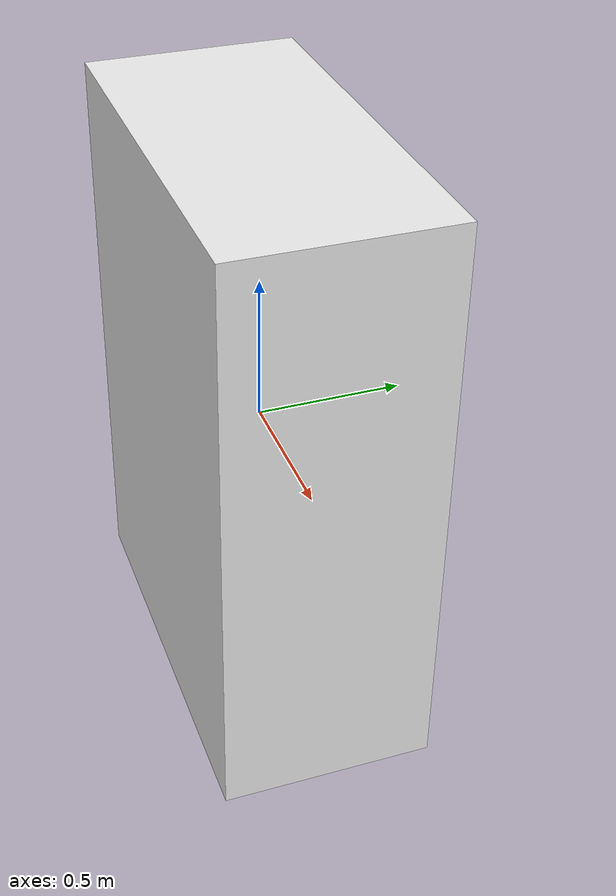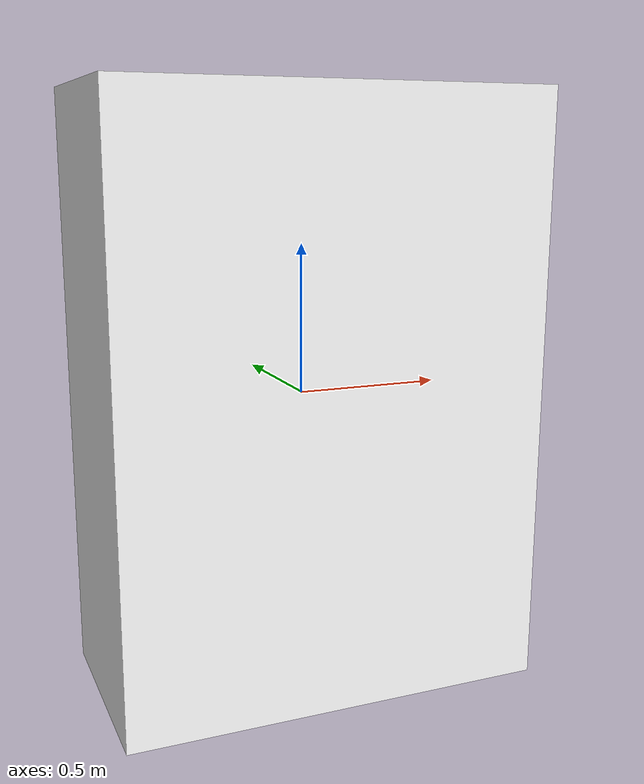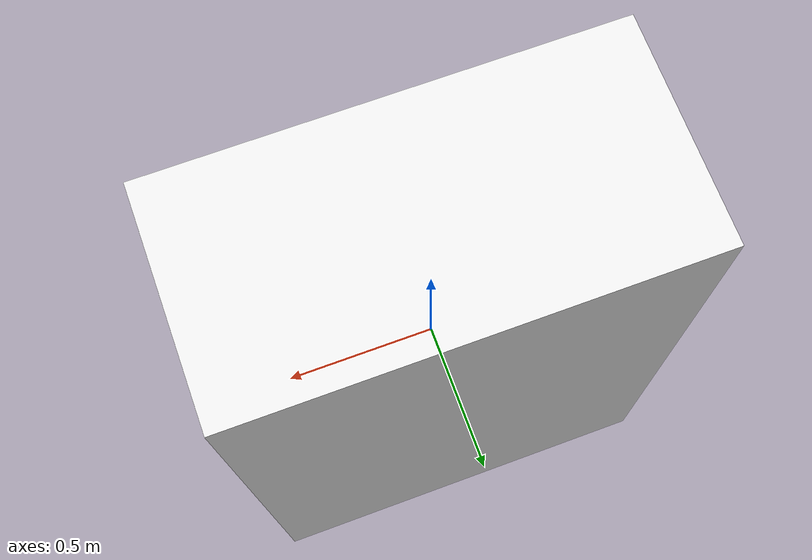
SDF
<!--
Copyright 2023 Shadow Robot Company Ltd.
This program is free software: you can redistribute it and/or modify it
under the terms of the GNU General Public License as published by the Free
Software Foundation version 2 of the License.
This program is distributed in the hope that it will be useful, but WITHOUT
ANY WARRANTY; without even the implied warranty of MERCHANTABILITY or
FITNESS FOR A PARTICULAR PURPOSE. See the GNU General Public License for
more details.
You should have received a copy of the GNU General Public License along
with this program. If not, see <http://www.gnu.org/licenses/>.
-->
<?xml version='1.0'?>

<sdf version="1.4">
  <model name="xprize_camera_stand">
    <static>true</static>
    <link name="link">
      <collision name="collision_xprize_camera_stand">
        <geometry>
          <box>
            <size>1.44 0.72 2</size>
          </box>
        </geometry>
      </collision>
      <visual name="visual_xprize_camera_stand">
        <geometry>
          <box>
            <size>1.44 0.72 2</size>
          </box>
        </geometry>
        <material>
          <script>
            <uri>file://media/materials/scripts/gazebo.material</uri>
            <name>Gazebo/White</name>
          </script>
        </material>
      </visual>
    </link>
  </model>
</sdf>
